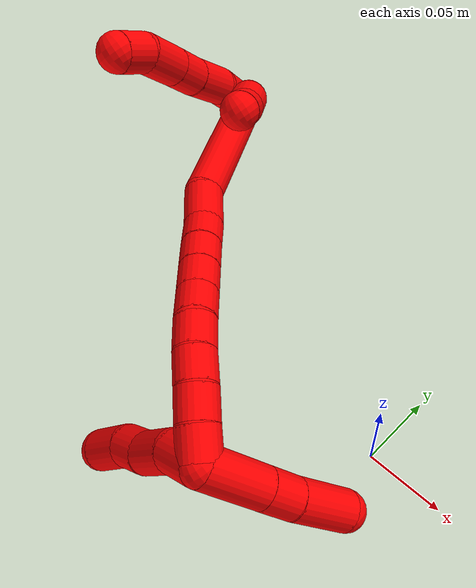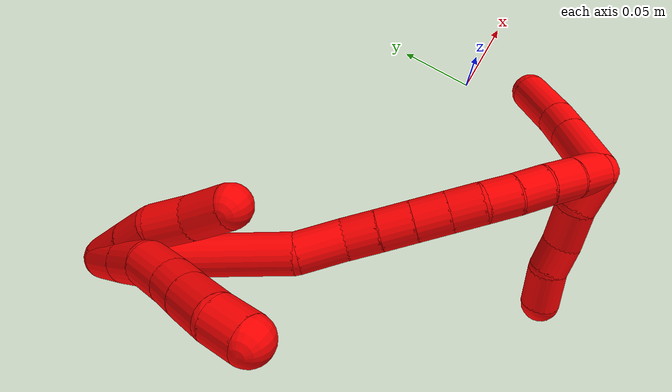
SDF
<sdf version="1.7">
 <world name="default">
  <model name="2">
   <static>0</static>
   <link name="2">
    <collision name="collision-cylinder-e_1_2_8">
     <pose>0.012402 -0.00317 0.005976 0.487771 1.07144 0.293314</pose>
     <geometry><cylinder><radius>0.0125</radius><length>0.028254</length></cylinder></geometry>
     <surface>
      <friction><ode><mu>1.16</mu><mu2>1.16</mu2><slip1>0</slip1><slip2>0</slip2></ode></friction>
      <contact><ode><kp>1e+06</kp><kd>1</kd><max_vel>0</max_vel><min_depth>0.001</min_depth></ode></contact>
     </surface>
    </collision>
    <visual name="visual-cylinder-e_1_2_8">
     <pose>0.012402 -0.00317 0.005976 0.487771 1.07144 0.293314</pose>
     <geometry><cylinder><radius>0.0125</radius><length>0.028254</length></cylinder></geometry>
     <material><ambient>1 0 0 1</ambient></material>
    </visual>
    <collision name="collision-cylinder-e_2_8_9">
     <pose>0.035902 -0.008775 0.017127 0.439678 1.09496 0.270783</pose>
     <geometry><cylinder><radius>0.0125</radius><length>0.02497</length></cylinder></geometry>
     <surface>
      <friction><ode><mu>1.16</mu><mu2>1.16</mu2><slip1>0</slip1><slip2>0</slip2></ode></friction>
      <contact><ode><kp>1e+06</kp><kd>1</kd><max_vel>0</max_vel><min_depth>0.001</min_depth></ode></contact>
     </surface>
    </collision>
    <visual name="visual-cylinder-e_2_8_9">
     <pose>0.035902 -0.008775 0.017127 0.439678 1.09496 0.270783</pose>
     <geometry><cylinder><radius>0.0125</radius><length>0.02497</length></cylinder></geometry>
     <material><ambient>1 0 0 1</ambient></material>
    </visual>
    <collision name="collision-cylinder-e_3_9_10">
     <pose>0.057664 -0.017099 0.029638 0.67646 0.847947 0.314892</pose>
     <geometry><cylinder><radius>0.0125</radius><length>0.028441</length></cylinder></geometry>
     <surface>
      <friction><ode><mu>1.16</mu><mu2>1.16</mu2><slip1>0</slip1><slip2>0</slip2></ode></friction>
      <contact><ode><kp>1e+06</kp><kd>1</kd><max_vel>0</max_vel><min_depth>0.001</min_depth></ode></contact>
     </surface>
    </collision>
    <visual name="visual-cylinder-e_3_9_10">
     <pose>0.057664 -0.017099 0.029638 0.67646 0.847947 0.314892</pose>
     <geometry><cylinder><radius>0.0125</radius><length>0.028441</length></cylinder></geometry>
     <material><ambient>1 0 0 1</ambient></material>
    </visual>
    <collision name="collision-cylinder-e_4_10_11">
     <pose>0.075734 -0.026611 0.042798 0.556396 0.82366 0.248226</pose>
     <geometry><cylinder><radius>0.0125</radius><length>0.020188</length></cylinder></geometry>
     <surface>
      <friction><ode><mu>1.16</mu><mu2>1.16</mu2><slip1>0</slip1><slip2>0</slip2></ode></friction>
      <contact><ode><kp>1e+06</kp><kd>1</kd><max_vel>0</max_vel><min_depth>0.001</min_depth></ode></contact>
     </surface>
    </collision>
    <visual name="visual-cylinder-e_4_10_11">
     <pose>0.075734 -0.026611 0.042798 0.556396 0.82366 0.248226</pose>
     <geometry><cylinder><radius>0.0125</radius><length>0.020188</length></cylinder></geometry>
     <material><ambient>1 0 0 1</ambient></material>
    </visual>
    <collision name="collision-cylinder-e_5_11_12">
     <pose>0.093429 -0.035264 0.056268 0.582027 0.84386 0.267297</pose>
     <geometry><cylinder><radius>0.0125</radius><length>0.027541</length></cylinder></geometry>
     <surface>
      <friction><ode><mu>1.16</mu><mu2>1.16</mu2><slip1>0</slip1><slip2>0</slip2></ode></friction>
      <contact><ode><kp>1e+06</kp><kd>1</kd><max_vel>0</max_vel><min_depth>0.001</min_depth></ode></contact>
     </surface>
    </collision>
    <visual name="visual-cylinder-e_5_11_12">
     <pose>0.093429 -0.035264 0.056268 0.582027 0.84386 0.267297</pose>
     <geometry><cylinder><radius>0.0125</radius><length>0.027541</length></cylinder></geometry>
     <material><ambient>1 0 0 1</ambient></material>
    </visual>
    <collision name="collision-cylinder-e_6_12_6">
     <pose>0.111074 -0.046519 0.067562 1.04051 0.795054 0.472132</pose>
     <geometry><cylinder><radius>0.0125</radius><length>0.020606</length></cylinder></geometry>
     <surface>
      <friction><ode><mu>1.16</mu><mu2>1.16</mu2><slip1>0</slip1><slip2>0</slip2></ode></friction>
      <contact><ode><kp>1e+06</kp><kd>1</kd><max_vel>0</max_vel><min_depth>0.001</min_depth></ode></contact>
     </surface>
    </collision>
    <visual name="visual-cylinder-e_6_12_6">
     <pose>0.111074 -0.046519 0.067562 1.04051 0.795054 0.472132</pose>
     <geometry><cylinder><radius>0.0125</radius><length>0.020606</length></cylinder></geometry>
     <material><ambient>1 0 0 1</ambient></material>
    </visual>
    <collision name="collision-cylinder-e_1_2_13">
     <pose>0.014118 0.000401 0.001638 -0.240275 1.45188 -0.213492</pose>
     <geometry><cylinder><radius>0.0125</radius><length>0.028438</length></cylinder></geometry>
     <surface>
      <friction><ode><mu>1.16</mu><mu2>1.16</mu2><slip1>0</slip1><slip2>0</slip2></ode></friction>
      <contact><ode><kp>1e+06</kp><kd>1</kd><max_vel>0</max_vel><min_depth>0.001</min_depth></ode></contact>
     </surface>
    </collision>
    <visual name="visual-cylinder-e_1_2_13">
     <pose>0.014118 0.000401 0.001638 -0.240275 1.45188 -0.213492</pose>
     <geometry><cylinder><radius>0.0125</radius><length>0.028438</length></cylinder></geometry>
     <material><ambient>1 0 0 1</ambient></material>
    </visual>
    <collision name="collision-cylinder-e_2_13_14">
     <pose>0.038815 0.000956 0.003901 -0.240223 1.5101 -0.226191</pose>
     <geometry><cylinder><radius>0.0125</radius><length>0.021196</length></cylinder></geometry>
     <surface>
      <friction><ode><mu>1.16</mu><mu2>1.16</mu2><slip1>0</slip1><slip2>0</slip2></ode></friction>
      <contact><ode><kp>1e+06</kp><kd>1</kd><max_vel>0</max_vel><min_depth>0.001</min_depth></ode></contact>
     </surface>
    </collision>
    <visual name="visual-cylinder-e_2_13_14">
     <pose>0.038815 0.000956 0.003901 -0.240223 1.5101 -0.226191</pose>
     <geometry><cylinder><radius>0.0125</radius><length>0.021196</length></cylinder></geometry>
     <material><ambient>1 0 0 1</ambient></material>
    </visual>
    <collision name="collision-cylinder-e_3_14_15">
     <pose>0.061141 -0.002243 0.00352 1.86235 1.28127 1.57291</pose>
     <geometry><cylinder><radius>0.0125</radius><length>0.024514</length></cylinder></geometry>
     <surface>
      <friction><ode><mu>1.16</mu><mu2>1.16</mu2><slip1>0</slip1><slip2>0</slip2></ode></friction>
      <contact><ode><kp>1e+06</kp><kd>1</kd><max_vel>0</max_vel><min_depth>0.001</min_depth></ode></contact>
     </surface>
    </collision>
    <visual name="visual-cylinder-e_3_14_15">
     <pose>0.061141 -0.002243 0.00352 1.86235 1.28127 1.57291</pose>
     <geometry><cylinder><radius>0.0125</radius><length>0.024514</length></cylinder></geometry>
     <material><ambient>1 0 0 1</ambient></material>
    </visual>
    <collision name="collision-cylinder-e_4_15_5">
     <pose>0.085588 -0.007904 0.003183 1.28894 1.38367 1.11371</pose>
     <geometry><cylinder><radius>0.0125</radius><length>0.025852</length></cylinder></geometry>
     <surface>
      <friction><ode><mu>1.16</mu><mu2>1.16</mu2><slip1>0</slip1><slip2>0</slip2></ode></friction>
      <contact><ode><kp>1e+06</kp><kd>1</kd><max_vel>0</max_vel><min_depth>0.001</min_depth></ode></contact>
     </surface>
    </collision>
    <visual name="visual-cylinder-e_4_15_5">
     <pose>0.085588 -0.007904 0.003183 1.28894 1.38367 1.11371</pose>
     <geometry><cylinder><radius>0.0125</radius><length>0.025852</length></cylinder></geometry>
     <material><ambient>1 0 0 1</ambient></material>
    </visual>
    <collision name="collision-cylinder-e_1_2_16">
     <pose>0.044616 -0.028946 -0.013849 2.01706 0.94729 1.36577</pose>
     <geometry><cylinder><radius>0.0125</radius><length>0.109913</length></cylinder></geometry>
     <surface>
      <friction><ode><mu>1.16</mu><mu2>1.16</mu2><slip1>0</slip1><slip2>0</slip2></ode></friction>
      <contact><ode><kp>1e+06</kp><kd>1</kd><max_vel>0</max_vel><min_depth>0.001</min_depth></ode></contact>
     </surface>
    </collision>
    <visual name="visual-cylinder-e_1_2_16">
     <pose>0.044616 -0.028946 -0.013849 2.01706 0.94729 1.36577</pose>
     <geometry><cylinder><radius>0.0125</radius><length>0.109913</length></cylinder></geometry>
     <material><ambient>1 0 0 1</ambient></material>
    </visual>
    <collision name="collision-cylinder-e_2_16_17">
     <pose>0.100652 -0.062912 -0.034919 2.53406 0.914601 2.00722</pose>
     <geometry><cylinder><radius>0.0125</radius><length>0.028829</length></cylinder></geometry>
     <surface>
      <friction><ode><mu>1.16</mu><mu2>1.16</mu2><slip1>0</slip1><slip2>0</slip2></ode></friction>
      <contact><ode><kp>1e+06</kp><kd>1</kd><max_vel>0</max_vel><min_depth>0.001</min_depth></ode></contact>
     </surface>
    </collision>
    <visual name="visual-cylinder-e_2_16_17">
     <pose>0.100652 -0.062912 -0.034919 2.53406 0.914601 2.00722</pose>
     <geometry><cylinder><radius>0.0125</radius><length>0.028829</length></cylinder></geometry>
     <material><ambient>1 0 0 1</ambient></material>
    </visual>
    <collision name="collision-cylinder-e_3_17_18">
     <pose>0.121035 -0.071191 -0.045534 2.37644 1.08729 1.9668</pose>
     <geometry><cylinder><radius>0.0125</radius><length>0.020245</length></cylinder></geometry>
     <surface>
      <friction><ode><mu>1.16</mu><mu2>1.16</mu2><slip1>0</slip1><slip2>0</slip2></ode></friction>
      <contact><ode><kp>1e+06</kp><kd>1</kd><max_vel>0</max_vel><min_depth>0.001</min_depth></ode></contact>
     </surface>
    </collision>
    <visual name="visual-cylinder-e_3_17_18">
     <pose>0.121035 -0.071191 -0.045534 2.37644 1.08729 1.9668</pose>
     <geometry><cylinder><radius>0.0125</radius><length>0.020245</length></cylinder></geometry>
     <material><ambient>1 0 0 1</ambient></material>
    </visual>
    <collision name="collision-cylinder-e_4_18_19">
     <pose>0.138745 -0.077782 -0.052752 2.42503 1.0454 1.98899</pose>
     <geometry><cylinder><radius>0.0125</radius><length>0.020222</length></cylinder></geometry>
     <surface>
      <friction><ode><mu>1.16</mu><mu2>1.16</mu2><slip1>0</slip1><slip2>0</slip2></ode></friction>
      <contact><ode><kp>1e+06</kp><kd>1</kd><max_vel>0</max_vel><min_depth>0.001</min_depth></ode></contact>
     </surface>
    </collision>
    <visual name="visual-cylinder-e_4_18_19">
     <pose>0.138745 -0.077782 -0.052752 2.42503 1.0454 1.98899</pose>
     <geometry><cylinder><radius>0.0125</radius><length>0.020222</length></cylinder></geometry>
     <material><ambient>1 0 0 1</ambient></material>
    </visual>
    <collision name="collision-cylinder-e_5_19_20">
     <pose>0.156363 -0.084568 -0.06062 2.43441 1.03068 1.98649</pose>
     <geometry><cylinder><radius>0.0125</radius><length>0.020688</length></cylinder></geometry>
     <surface>
      <friction><ode><mu>1.16</mu><mu2>1.16</mu2><slip1>0</slip1><slip2>0</slip2></ode></friction>
      <contact><ode><kp>1e+06</kp><kd>1</kd><max_vel>0</max_vel><min_depth>0.001</min_depth></ode></contact>
     </surface>
    </collision>
    <visual name="visual-cylinder-e_5_19_20">
     <pose>0.156363 -0.084568 -0.06062 2.43441 1.03068 1.98649</pose>
     <geometry><cylinder><radius>0.0125</radius><length>0.020688</length></cylinder></geometry>
     <material><ambient>1 0 0 1</ambient></material>
    </visual>
    <collision name="collision-cylinder-e_6_20_21">
     <pose>0.173861 -0.091371 -0.068567 2.43275 1.03331 1.98695</pose>
     <geometry><cylinder><radius>0.0125</radius><length>0.020084</length></cylinder></geometry>
     <surface>
      <friction><ode><mu>1.16</mu><mu2>1.16</mu2><slip1>0</slip1><slip2>0</slip2></ode></friction>
      <contact><ode><kp>1e+06</kp><kd>1</kd><max_vel>0</max_vel><min_depth>0.001</min_depth></ode></contact>
     </surface>
    </collision>
    <visual name="visual-cylinder-e_6_20_21">
     <pose>0.173861 -0.091371 -0.068567 2.43275 1.03331 1.98695</pose>
     <geometry><cylinder><radius>0.0125</radius><length>0.020084</length></cylinder></geometry>
     <material><ambient>1 0 0 1</ambient></material>
    </visual>
    <collision name="collision-cylinder-e_7_21_22">
     <pose>0.19004 -0.098537 -0.077802 2.51999 0.855711 1.9143</pose>
     <geometry><cylinder><radius>0.0125</radius><length>0.020009</length></cylinder></geometry>
     <surface>
      <friction><ode><mu>1.16</mu><mu2>1.16</mu2><slip1>0</slip1><slip2>0</slip2></ode></friction>
      <contact><ode><kp>1e+06</kp><kd>1</kd><max_vel>0</max_vel><min_depth>0.001</min_depth></ode></contact>
     </surface>
    </collision>
    <visual name="visual-cylinder-e_7_21_22">
     <pose>0.19004 -0.098537 -0.077802 2.51999 0.855711 1.9143</pose>
     <geometry><cylinder><radius>0.0125</radius><length>0.020009</length></cylinder></geometry>
     <material><ambient>1 0 0 1</ambient></material>
    </visual>
    <collision name="collision-cylinder-e_8_22_23">
     <pose>0.204562 -0.106004 -0.089319 2.60874 0.770457 1.95677</pose>
     <geometry><cylinder><radius>0.0125</radius><length>0.020009</length></cylinder></geometry>
     <surface>
      <friction><ode><mu>1.16</mu><mu2>1.16</mu2><slip1>0</slip1><slip2>0</slip2></ode></friction>
      <contact><ode><kp>1e+06</kp><kd>1</kd><max_vel>0</max_vel><min_depth>0.001</min_depth></ode></contact>
     </surface>
    </collision>
    <visual name="visual-cylinder-e_8_22_23">
     <pose>0.204562 -0.106004 -0.089319 2.60874 0.770457 1.95677</pose>
     <geometry><cylinder><radius>0.0125</radius><length>0.020009</length></cylinder></geometry>
     <material><ambient>1 0 0 1</ambient></material>
    </visual>
    <collision name="collision-cylinder-e_9_23_24">
     <pose>0.217598 -0.113866 -0.102242 2.58268 0.652019 1.73396</pose>
     <geometry><cylinder><radius>0.0125</radius><length>0.020001</length></cylinder></geometry>
     <surface>
      <friction><ode><mu>1.16</mu><mu2>1.16</mu2><slip1>0</slip1><slip2>0</slip2></ode></friction>
      <contact><ode><kp>1e+06</kp><kd>1</kd><max_vel>0</max_vel><min_depth>0.001</min_depth></ode></contact>
     </surface>
    </collision>
    <visual name="visual-cylinder-e_9_23_24">
     <pose>0.217598 -0.113866 -0.102242 2.58268 0.652019 1.73396</pose>
     <geometry><cylinder><radius>0.0125</radius><length>0.020001</length></cylinder></geometry>
     <material><ambient>1 0 0 1</ambient></material>
    </visual>
    <collision name="collision-cylinder-e_10_24_1">
     <pose>0.228967 -0.122254 -0.116364 2.62714 0.558674 1.65724</pose>
     <geometry><cylinder><radius>0.0125</radius><length>0.02</length></cylinder></geometry>
     <surface>
      <friction><ode><mu>1.16</mu><mu2>1.16</mu2><slip1>0</slip1><slip2>0</slip2></ode></friction>
      <contact><ode><kp>1e+06</kp><kd>1</kd><max_vel>0</max_vel><min_depth>0.001</min_depth></ode></contact>
     </surface>
    </collision>
    <visual name="visual-cylinder-e_10_24_1">
     <pose>0.228967 -0.122254 -0.116364 2.62714 0.558674 1.65724</pose>
     <geometry><cylinder><radius>0.0125</radius><length>0.02</length></cylinder></geometry>
     <material><ambient>1 0 0 1</ambient></material>
    </visual>
    <collision name="collision-cylinder-e_1_1_25">
     <pose>0.223486 -0.13295 -0.120961 1.16729 -0.988912 -0.684078</pose>
     <geometry><cylinder><radius>0.0125</radius><length>0.025812</length></cylinder></geometry>
     <surface>
      <friction><ode><mu>1.16</mu><mu2>1.16</mu2><slip1>0</slip1><slip2>0</slip2></ode></friction>
      <contact><ode><kp>1e+06</kp><kd>1</kd><max_vel>0</max_vel><min_depth>0.001</min_depth></ode></contact>
     </surface>
    </collision>
    <visual name="visual-cylinder-e_1_1_25">
     <pose>0.223486 -0.13295 -0.120961 1.16729 -0.988912 -0.684078</pose>
     <geometry><cylinder><radius>0.0125</radius><length>0.025812</length></cylinder></geometry>
     <material><ambient>1 0 0 1</ambient></material>
    </visual>
    <collision name="collision-cylinder-e_2_25_26">
     <pose>0.202844 -0.148721 -0.11862 1.61882 -0.816892 -0.852493</pose>
     <geometry><cylinder><radius>0.0125</radius><length>0.02705</length></cylinder></geometry>
     <surface>
      <friction><ode><mu>1.16</mu><mu2>1.16</mu2><slip1>0</slip1><slip2>0</slip2></ode></friction>
      <contact><ode><kp>1e+06</kp><kd>1</kd><max_vel>0</max_vel><min_depth>0.001</min_depth></ode></contact>
     </surface>
    </collision>
    <visual name="visual-cylinder-e_2_25_26">
     <pose>0.202844 -0.148721 -0.11862 1.61882 -0.816892 -0.852493</pose>
     <geometry><cylinder><radius>0.0125</radius><length>0.02705</length></cylinder></geometry>
     <material><ambient>1 0 0 1</ambient></material>
    </visual>
    <collision name="collision-cylinder-e_3_26_27">
     <pose>0.184842 -0.163757 -0.117105 1.24446 -0.926814 -0.688318</pose>
     <geometry><cylinder><radius>0.0125</radius><length>0.020362</length></cylinder></geometry>
     <surface>
      <friction><ode><mu>1.16</mu><mu2>1.16</mu2><slip1>0</slip1><slip2>0</slip2></ode></friction>
      <contact><ode><kp>1e+06</kp><kd>1</kd><max_vel>0</max_vel><min_depth>0.001</min_depth></ode></contact>
     </surface>
    </collision>
    <visual name="visual-cylinder-e_3_26_27">
     <pose>0.184842 -0.163757 -0.117105 1.24446 -0.926814 -0.688318</pose>
     <geometry><cylinder><radius>0.0125</radius><length>0.020362</length></cylinder></geometry>
     <material><ambient>1 0 0 1</ambient></material>
    </visual>
    <collision name="collision-cylinder-e_4_27_4">
     <pose>0.167918 -0.179652 -0.115106 1.56684 -0.715477 -0.712886</pose>
     <geometry><cylinder><radius>0.0125</radius><length>0.026777</length></cylinder></geometry>
     <surface>
      <friction><ode><mu>1.16</mu><mu2>1.16</mu2><slip1>0</slip1><slip2>0</slip2></ode></friction>
      <contact><ode><kp>1e+06</kp><kd>1</kd><max_vel>0</max_vel><min_depth>0.001</min_depth></ode></contact>
     </surface>
    </collision>
    <visual name="visual-cylinder-e_4_27_4">
     <pose>0.167918 -0.179652 -0.115106 1.56684 -0.715477 -0.712886</pose>
     <geometry><cylinder><radius>0.0125</radius><length>0.026777</length></cylinder></geometry>
     <material><ambient>1 0 0 1</ambient></material>
    </visual>
    <collision name="collision-cylinder-e_1_1_28">
     <pose>0.228471 -0.118087 -0.141366 -2.69951 -0.28902 1.14937</pose>
     <geometry><cylinder><radius>0.0125</radius><length>0.040676</length></cylinder></geometry>
     <surface>
      <friction><ode><mu>1.16</mu><mu2>1.16</mu2><slip1>0</slip1><slip2>0</slip2></ode></friction>
      <contact><ode><kp>1e+06</kp><kd>1</kd><max_vel>0</max_vel><min_depth>0.001</min_depth></ode></contact>
     </surface>
    </collision>
    <visual name="visual-cylinder-e_1_1_28">
     <pose>0.228471 -0.118087 -0.141366 -2.69951 -0.28902 1.14937</pose>
     <geometry><cylinder><radius>0.0125</radius><length>0.040676</length></cylinder></geometry>
     <material><ambient>1 0 0 1</ambient></material>
    </visual>
    <collision name="collision-cylinder-e_2_28_29">
     <pose>0.219566 -0.105534 -0.167985 -2.70383 -0.303223 1.20367</pose>
     <geometry><cylinder><radius>0.0125</radius><length>0.020821</length></cylinder></geometry>
     <surface>
      <friction><ode><mu>1.16</mu><mu2>1.16</mu2><slip1>0</slip1><slip2>0</slip2></ode></friction>
      <contact><ode><kp>1e+06</kp><kd>1</kd><max_vel>0</max_vel><min_depth>0.001</min_depth></ode></contact>
     </surface>
    </collision>
    <visual name="visual-cylinder-e_2_28_29">
     <pose>0.219566 -0.105534 -0.167985 -2.70383 -0.303223 1.20367</pose>
     <geometry><cylinder><radius>0.0125</radius><length>0.020821</length></cylinder></geometry>
     <material><ambient>1 0 0 1</ambient></material>
    </visual>
    <collision name="collision-cylinder-e_3_29_3">
     <pose>0.209475 -0.092727 -0.192732 -2.64197 -0.37114 1.26869</pose>
     <geometry><cylinder><radius>0.0125</radius><length>0.038502</length></cylinder></geometry>
     <surface>
      <friction><ode><mu>1.16</mu><mu2>1.16</mu2><slip1>0</slip1><slip2>0</slip2></ode></friction>
      <contact><ode><kp>1e+06</kp><kd>1</kd><max_vel>0</max_vel><min_depth>0.001</min_depth></ode></contact>
     </surface>
    </collision>
    <visual name="visual-cylinder-e_3_29_3">
     <pose>0.209475 -0.092727 -0.192732 -2.64197 -0.37114 1.26869</pose>
     <geometry><cylinder><radius>0.0125</radius><length>0.038502</length></cylinder></geometry>
     <material><ambient>1 0 0 1</ambient></material>
    </visual>
    <collision name="collision-sphere-3">
     <pose>0.202493 -0.084132 -0.208479 0 -0 0</pose>
     <geometry><sphere><radius>0.0125</radius></sphere></geometry>
     <surface>
      <friction><ode><mu>1.16</mu><mu2>1.16</mu2><slip1>0</slip1><slip2>0</slip2></ode></friction>
      <contact><ode><kp>1e+06</kp><kd>1</kd><max_vel>0</max_vel><min_depth>0.001</min_depth></ode></contact>
     </surface>
    </collision>
    <visual name="visual-sphere-3">
     <pose>0.202493 -0.084132 -0.208479 0 -0 0</pose>
     <geometry><sphere><radius>0.0125</radius></sphere></geometry>
     <material><ambient>1 0 0 1</ambient></material>
    </visual>
    <collision name="collision-sphere-29">
     <pose>0.216457 -0.101322 -0.176984 0 -0 0</pose>
     <geometry><sphere><radius>0.0125</radius></sphere></geometry>
     <surface>
      <friction><ode><mu>1.16</mu><mu2>1.16</mu2><slip1>0</slip1><slip2>0</slip2></ode></friction>
      <contact><ode><kp>1e+06</kp><kd>1</kd><max_vel>0</max_vel><min_depth>0.001</min_depth></ode></contact>
     </surface>
    </collision>
    <visual name="visual-sphere-29">
     <pose>0.216457 -0.101322 -0.176984 0 -0 0</pose>
     <geometry><sphere><radius>0.0125</radius></sphere></geometry>
     <material><ambient>1 0 0 1</ambient></material>
    </visual>
    <collision name="collision-sphere-28">
     <pose>0.222674 -0.109746 -0.158987 0 -0 0</pose>
     <geometry><sphere><radius>0.0125</radius></sphere></geometry>
     <surface>
      <friction><ode><mu>1.16</mu><mu2>1.16</mu2><slip1>0</slip1><slip2>0</slip2></ode></friction>
      <contact><ode><kp>1e+06</kp><kd>1</kd><max_vel>0</max_vel><min_depth>0.001</min_depth></ode></contact>
     </surface>
    </collision>
    <visual name="visual-sphere-28">
     <pose>0.222674 -0.109746 -0.158987 0 -0 0</pose>
     <geometry><sphere><radius>0.0125</radius></sphere></geometry>
     <material><ambient>1 0 0 1</ambient></material>
    </visual>
    <collision name="collision-sphere-4">
     <pose>0.159135 -0.189758 -0.115066 0 -0 0</pose>
     <geometry><sphere><radius>0.0125</radius></sphere></geometry>
     <surface>
      <friction><ode><mu>1.16</mu><mu2>1.16</mu2><slip1>0</slip1><slip2>0</slip2></ode></friction>
      <contact><ode><kp>1e+06</kp><kd>1</kd><max_vel>0</max_vel><min_depth>0.001</min_depth></ode></contact>
     </surface>
    </collision>
    <visual name="visual-sphere-4">
     <pose>0.159135 -0.189758 -0.115066 0 -0 0</pose>
     <geometry><sphere><radius>0.0125</radius></sphere></geometry>
     <material><ambient>1 0 0 1</ambient></material>
    </visual>
    <collision name="collision-sphere-27">
     <pose>0.1767 -0.169547 -0.115145 0 -0 0</pose>
     <geometry><sphere><radius>0.0125</radius></sphere></geometry>
     <surface>
      <friction><ode><mu>1.16</mu><mu2>1.16</mu2><slip1>0</slip1><slip2>0</slip2></ode></friction>
      <contact><ode><kp>1e+06</kp><kd>1</kd><max_vel>0</max_vel><min_depth>0.001</min_depth></ode></contact>
     </surface>
    </collision>
    <visual name="visual-sphere-27">
     <pose>0.1767 -0.169547 -0.115145 0 -0 0</pose>
     <geometry><sphere><radius>0.0125</radius></sphere></geometry>
     <material><ambient>1 0 0 1</ambient></material>
    </visual>
    <collision name="collision-sphere-26">
     <pose>0.192984 -0.157968 -0.119064 0 -0 0</pose>
     <geometry><sphere><radius>0.0125</radius></sphere></geometry>
     <surface>
      <friction><ode><mu>1.16</mu><mu2>1.16</mu2><slip1>0</slip1><slip2>0</slip2></ode></friction>
      <contact><ode><kp>1e+06</kp><kd>1</kd><max_vel>0</max_vel><min_depth>0.001</min_depth></ode></contact>
     </surface>
    </collision>
    <visual name="visual-sphere-26">
     <pose>0.192984 -0.157968 -0.119064 0 -0 0</pose>
     <geometry><sphere><radius>0.0125</radius></sphere></geometry>
     <material><ambient>1 0 0 1</ambient></material>
    </visual>
    <collision name="collision-sphere-25">
     <pose>0.212703 -0.139474 -0.118176 0 -0 0</pose>
     <geometry><sphere><radius>0.0125</radius></sphere></geometry>
     <surface>
      <friction><ode><mu>1.16</mu><mu2>1.16</mu2><slip1>0</slip1><slip2>0</slip2></ode></friction>
      <contact><ode><kp>1e+06</kp><kd>1</kd><max_vel>0</max_vel><min_depth>0.001</min_depth></ode></contact>
     </surface>
    </collision>
    <visual name="visual-sphere-25">
     <pose>0.212703 -0.139474 -0.118176 0 -0 0</pose>
     <geometry><sphere><radius>0.0125</radius></sphere></geometry>
     <material><ambient>1 0 0 1</ambient></material>
    </visual>
    <collision name="collision-sphere-1">
     <pose>0.234268 -0.126427 -0.123746 0 -0 0</pose>
     <geometry><sphere><radius>0.0125</radius></sphere></geometry>
     <surface>
      <friction><ode><mu>1.16</mu><mu2>1.16</mu2><slip1>0</slip1><slip2>0</slip2></ode></friction>
      <contact><ode><kp>1e+06</kp><kd>1</kd><max_vel>0</max_vel><min_depth>0.001</min_depth></ode></contact>
     </surface>
    </collision>
    <visual name="visual-sphere-1">
     <pose>0.234268 -0.126427 -0.123746 0 -0 0</pose>
     <geometry><sphere><radius>0.0125</radius></sphere></geometry>
     <material><ambient>1 0 0 1</ambient></material>
    </visual>
    <collision name="collision-sphere-24">
     <pose>0.223666 -0.118082 -0.108981 0 -0 0</pose>
     <geometry><sphere><radius>0.0125</radius></sphere></geometry>
     <surface>
      <friction><ode><mu>1.16</mu><mu2>1.16</mu2><slip1>0</slip1><slip2>0</slip2></ode></friction>
      <contact><ode><kp>1e+06</kp><kd>1</kd><max_vel>0</max_vel><min_depth>0.001</min_depth></ode></contact>
     </surface>
    </collision>
    <visual name="visual-sphere-24">
     <pose>0.223666 -0.118082 -0.108981 0 -0 0</pose>
     <geometry><sphere><radius>0.0125</radius></sphere></geometry>
     <material><ambient>1 0 0 1</ambient></material>
    </visual>
    <collision name="collision-sphere-23">
     <pose>0.21153 -0.109651 -0.095503 0 -0 0</pose>
     <geometry><sphere><radius>0.0125</radius></sphere></geometry>
     <surface>
      <friction><ode><mu>1.16</mu><mu2>1.16</mu2><slip1>0</slip1><slip2>0</slip2></ode></friction>
      <contact><ode><kp>1e+06</kp><kd>1</kd><max_vel>0</max_vel><min_depth>0.001</min_depth></ode></contact>
     </surface>
    </collision>
    <visual name="visual-sphere-23">
     <pose>0.21153 -0.109651 -0.095503 0 -0 0</pose>
     <geometry><sphere><radius>0.0125</radius></sphere></geometry>
     <material><ambient>1 0 0 1</ambient></material>
    </visual>
    <collision name="collision-sphere-22">
     <pose>0.197594 -0.102357 -0.083135 0 -0 0</pose>
     <geometry><sphere><radius>0.0125</radius></sphere></geometry>
     <surface>
      <friction><ode><mu>1.16</mu><mu2>1.16</mu2><slip1>0</slip1><slip2>0</slip2></ode></friction>
      <contact><ode><kp>1e+06</kp><kd>1</kd><max_vel>0</max_vel><min_depth>0.001</min_depth></ode></contact>
     </surface>
    </collision>
    <visual name="visual-sphere-22">
     <pose>0.197594 -0.102357 -0.083135 0 -0 0</pose>
     <geometry><sphere><radius>0.0125</radius></sphere></geometry>
     <material><ambient>1 0 0 1</ambient></material>
    </visual>
    <collision name="collision-sphere-21">
     <pose>0.182487 -0.094717 -0.072469 0 -0 0</pose>
     <geometry><sphere><radius>0.0125</radius></sphere></geometry>
     <surface>
      <friction><ode><mu>1.16</mu><mu2>1.16</mu2><slip1>0</slip1><slip2>0</slip2></ode></friction>
      <contact><ode><kp>1e+06</kp><kd>1</kd><max_vel>0</max_vel><min_depth>0.001</min_depth></ode></contact>
     </surface>
    </collision>
    <visual name="visual-sphere-21">
     <pose>0.182487 -0.094717 -0.072469 0 -0 0</pose>
     <geometry><sphere><radius>0.0125</radius></sphere></geometry>
     <material><ambient>1 0 0 1</ambient></material>
    </visual>
    <collision name="collision-sphere-12">
     <pose>0.103718 -0.040295 0.063913 0 -0 0</pose>
     <geometry><sphere><radius>0.0125</radius></sphere></geometry>
     <surface>
      <friction><ode><mu>1.16</mu><mu2>1.16</mu2><slip1>0</slip1><slip2>0</slip2></ode></friction>
      <contact><ode><kp>1e+06</kp><kd>1</kd><max_vel>0</max_vel><min_depth>0.001</min_depth></ode></contact>
     </surface>
    </collision>
    <visual name="visual-sphere-12">
     <pose>0.103718 -0.040295 0.063913 0 -0 0</pose>
     <geometry><sphere><radius>0.0125</radius></sphere></geometry>
     <material><ambient>1 0 0 1</ambient></material>
    </visual>
    <collision name="collision-sphere-11">
     <pose>0.083139 -0.030233 0.048623 0 -0 0</pose>
     <geometry><sphere><radius>0.0125</radius></sphere></geometry>
     <surface>
      <friction><ode><mu>1.16</mu><mu2>1.16</mu2><slip1>0</slip1><slip2>0</slip2></ode></friction>
      <contact><ode><kp>1e+06</kp><kd>1</kd><max_vel>0</max_vel><min_depth>0.001</min_depth></ode></contact>
     </surface>
    </collision>
    <visual name="visual-sphere-11">
     <pose>0.083139 -0.030233 0.048623 0 -0 0</pose>
     <geometry><sphere><radius>0.0125</radius></sphere></geometry>
     <material><ambient>1 0 0 1</ambient></material>
    </visual>
    <collision name="collision-sphere-10">
     <pose>0.068329 -0.022988 0.036974 0 -0 0</pose>
     <geometry><sphere><radius>0.0125</radius></sphere></geometry>
     <surface>
      <friction><ode><mu>1.16</mu><mu2>1.16</mu2><slip1>0</slip1><slip2>0</slip2></ode></friction>
      <contact><ode><kp>1e+06</kp><kd>1</kd><max_vel>0</max_vel><min_depth>0.001</min_depth></ode></contact>
     </surface>
    </collision>
    <visual name="visual-sphere-10">
     <pose>0.068329 -0.022988 0.036974 0 -0 0</pose>
     <geometry><sphere><radius>0.0125</radius></sphere></geometry>
     <material><ambient>1 0 0 1</ambient></material>
    </visual>
    <collision name="collision-sphere-9">
     <pose>0.047 -0.01121 0.022302 0 -0 0</pose>
     <geometry><sphere><radius>0.0125</radius></sphere></geometry>
     <surface>
      <friction><ode><mu>1.16</mu><mu2>1.16</mu2><slip1>0</slip1><slip2>0</slip2></ode></friction>
      <contact><ode><kp>1e+06</kp><kd>1</kd><max_vel>0</max_vel><min_depth>0.001</min_depth></ode></contact>
     </surface>
    </collision>
    <visual name="visual-sphere-9">
     <pose>0.047 -0.01121 0.022302 0 -0 0</pose>
     <geometry><sphere><radius>0.0125</radius></sphere></geometry>
     <material><ambient>1 0 0 1</ambient></material>
    </visual>
    <collision name="collision-sphere-2">
     <geometry><sphere><radius>0.0125</radius></sphere></geometry>
     <surface>
      <friction><ode><mu>1.16</mu><mu2>1.16</mu2><slip1>0</slip1><slip2>0</slip2></ode></friction>
      <contact><ode><kp>1e+06</kp><kd>1</kd><max_vel>0</max_vel><min_depth>0.001</min_depth></ode></contact>
     </surface>
    </collision>
    <visual name="visual-sphere-2">
     <geometry><sphere><radius>0.0125</radius></sphere></geometry>
     <material><ambient>1 0 0 1</ambient></material>
    </visual>
    <collision name="collision-sphere-19">
     <pose>0.147492 -0.081112 -0.056576 0 -0 0</pose>
     <geometry><sphere><radius>0.0125</radius></sphere></geometry>
     <surface>
      <friction><ode><mu>1.16</mu><mu2>1.16</mu2><slip1>0</slip1><slip2>0</slip2></ode></friction>
      <contact><ode><kp>1e+06</kp><kd>1</kd><max_vel>0</max_vel><min_depth>0.001</min_depth></ode></contact>
     </surface>
    </collision>
    <visual name="visual-sphere-19">
     <pose>0.147492 -0.081112 -0.056576 0 -0 0</pose>
     <geometry><sphere><radius>0.0125</radius></sphere></geometry>
     <material><ambient>1 0 0 1</ambient></material>
    </visual>
    <collision name="collision-sphere-8">
     <pose>0.024804 -0.006341 0.011952 0 -0 0</pose>
     <geometry><sphere><radius>0.0125</radius></sphere></geometry>
     <surface>
      <friction><ode><mu>1.16</mu><mu2>1.16</mu2><slip1>0</slip1><slip2>0</slip2></ode></friction>
      <contact><ode><kp>1e+06</kp><kd>1</kd><max_vel>0</max_vel><min_depth>0.001</min_depth></ode></contact>
     </surface>
    </collision>
    <visual name="visual-sphere-8">
     <pose>0.024804 -0.006341 0.011952 0 -0 0</pose>
     <geometry><sphere><radius>0.0125</radius></sphere></geometry>
     <material><ambient>1 0 0 1</ambient></material>
    </visual>
    <collision name="collision-sphere-6">
     <pose>0.118429 -0.052742 0.071211 0 -0 0</pose>
     <geometry><sphere><radius>0.0125</radius></sphere></geometry>
     <surface>
      <friction><ode><mu>1.16</mu><mu2>1.16</mu2><slip1>0</slip1><slip2>0</slip2></ode></friction>
      <contact><ode><kp>1e+06</kp><kd>1</kd><max_vel>0</max_vel><min_depth>0.001</min_depth></ode></contact>
     </surface>
    </collision>
    <visual name="visual-sphere-6">
     <pose>0.118429 -0.052742 0.071211 0 -0 0</pose>
     <geometry><sphere><radius>0.0125</radius></sphere></geometry>
     <material><ambient>1 0 0 1</ambient></material>
    </visual>
    <collision name="collision-sphere-13">
     <pose>0.028237 0.000803 0.003277 0 -0 0</pose>
     <geometry><sphere><radius>0.0125</radius></sphere></geometry>
     <surface>
      <friction><ode><mu>1.16</mu><mu2>1.16</mu2><slip1>0</slip1><slip2>0</slip2></ode></friction>
      <contact><ode><kp>1e+06</kp><kd>1</kd><max_vel>0</max_vel><min_depth>0.001</min_depth></ode></contact>
     </surface>
    </collision>
    <visual name="visual-sphere-13">
     <pose>0.028237 0.000803 0.003277 0 -0 0</pose>
     <geometry><sphere><radius>0.0125</radius></sphere></geometry>
     <material><ambient>1 0 0 1</ambient></material>
    </visual>
    <collision name="collision-sphere-14">
     <pose>0.049394 0.001109 0.004526 0 -0 0</pose>
     <geometry><sphere><radius>0.0125</radius></sphere></geometry>
     <surface>
      <friction><ode><mu>1.16</mu><mu2>1.16</mu2><slip1>0</slip1><slip2>0</slip2></ode></friction>
      <contact><ode><kp>1e+06</kp><kd>1</kd><max_vel>0</max_vel><min_depth>0.001</min_depth></ode></contact>
     </surface>
    </collision>
    <visual name="visual-sphere-14">
     <pose>0.049394 0.001109 0.004526 0 -0 0</pose>
     <geometry><sphere><radius>0.0125</radius></sphere></geometry>
     <material><ambient>1 0 0 1</ambient></material>
    </visual>
    <collision name="collision-sphere-15">
     <pose>0.072887 -0.005594 0.002514 0 -0 0</pose>
     <geometry><sphere><radius>0.0125</radius></sphere></geometry>
     <surface>
      <friction><ode><mu>1.16</mu><mu2>1.16</mu2><slip1>0</slip1><slip2>0</slip2></ode></friction>
      <contact><ode><kp>1e+06</kp><kd>1</kd><max_vel>0</max_vel><min_depth>0.001</min_depth></ode></contact>
     </surface>
    </collision>
    <visual name="visual-sphere-15">
     <pose>0.072887 -0.005594 0.002514 0 -0 0</pose>
     <geometry><sphere><radius>0.0125</radius></sphere></geometry>
     <material><ambient>1 0 0 1</ambient></material>
    </visual>
    <collision name="collision-sphere-5">
     <pose>0.098289 -0.010214 0.003852 0 -0 0</pose>
     <geometry><sphere><radius>0.0125</radius></sphere></geometry>
     <surface>
      <friction><ode><mu>1.16</mu><mu2>1.16</mu2><slip1>0</slip1><slip2>0</slip2></ode></friction>
      <contact><ode><kp>1e+06</kp><kd>1</kd><max_vel>0</max_vel><min_depth>0.001</min_depth></ode></contact>
     </surface>
    </collision>
    <visual name="visual-sphere-5">
     <pose>0.098289 -0.010214 0.003852 0 -0 0</pose>
     <geometry><sphere><radius>0.0125</radius></sphere></geometry>
     <material><ambient>1 0 0 1</ambient></material>
    </visual>
    <collision name="collision-sphere-16">
     <pose>0.089231 -0.057891 -0.027699 0 -0 0</pose>
     <geometry><sphere><radius>0.0125</radius></sphere></geometry>
     <surface>
      <friction><ode><mu>1.16</mu><mu2>1.16</mu2><slip1>0</slip1><slip2>0</slip2></ode></friction>
      <contact><ode><kp>1e+06</kp><kd>1</kd><max_vel>0</max_vel><min_depth>0.001</min_depth></ode></contact>
     </surface>
    </collision>
    <visual name="visual-sphere-16">
     <pose>0.089231 -0.057891 -0.027699 0 -0 0</pose>
     <geometry><sphere><radius>0.0125</radius></sphere></geometry>
     <material><ambient>1 0 0 1</ambient></material>
    </visual>
    <collision name="collision-sphere-17">
     <pose>0.112073 -0.067932 -0.04214 0 -0 0</pose>
     <geometry><sphere><radius>0.0125</radius></sphere></geometry>
     <surface>
      <friction><ode><mu>1.16</mu><mu2>1.16</mu2><slip1>0</slip1><slip2>0</slip2></ode></friction>
      <contact><ode><kp>1e+06</kp><kd>1</kd><max_vel>0</max_vel><min_depth>0.001</min_depth></ode></contact>
     </surface>
    </collision>
    <visual name="visual-sphere-17">
     <pose>0.112073 -0.067932 -0.04214 0 -0 0</pose>
     <geometry><sphere><radius>0.0125</radius></sphere></geometry>
     <material><ambient>1 0 0 1</ambient></material>
    </visual>
    <collision name="collision-sphere-18">
     <pose>0.129997 -0.074451 -0.048928 0 -0 0</pose>
     <geometry><sphere><radius>0.0125</radius></sphere></geometry>
     <surface>
      <friction><ode><mu>1.16</mu><mu2>1.16</mu2><slip1>0</slip1><slip2>0</slip2></ode></friction>
      <contact><ode><kp>1e+06</kp><kd>1</kd><max_vel>0</max_vel><min_depth>0.001</min_depth></ode></contact>
     </surface>
    </collision>
    <visual name="visual-sphere-18">
     <pose>0.129997 -0.074451 -0.048928 0 -0 0</pose>
     <geometry><sphere><radius>0.0125</radius></sphere></geometry>
     <material><ambient>1 0 0 1</ambient></material>
    </visual>
    <collision name="collision-sphere-20">
     <pose>0.165235 -0.088024 -0.064664 0 -0 0</pose>
     <geometry><sphere><radius>0.0125</radius></sphere></geometry>
     <surface>
      <friction><ode><mu>1.16</mu><mu2>1.16</mu2><slip1>0</slip1><slip2>0</slip2></ode></friction>
      <contact><ode><kp>1e+06</kp><kd>1</kd><max_vel>0</max_vel><min_depth>0.001</min_depth></ode></contact>
     </surface>
    </collision>
    <visual name="visual-sphere-20">
     <pose>0.165235 -0.088024 -0.064664 0 -0 0</pose>
     <geometry><sphere><radius>0.0125</radius></sphere></geometry>
     <material><ambient>1 0 0 1</ambient></material>
    </visual>
    <inertial>
     <pose>0.123033 -0.066759 -0.050384 0 -0 0</pose>
     <mass>0.75</mass>
     <inertia>
      <ixx>0.000143</ixx>
      <ixy>0</ixy>
      <ixz>0</ixz>
      <iyy>0.000178</iyy>
      <iyz>0</iyz>
      <izz>-5.2e-05</izz>
     </inertia>
    </inertial>
   </link>
   <pose>-0.23003 0.124362 0.07821 0.50753 -0.61054 -0.695487</pose>
  </model>
 </world>
</sdf>
